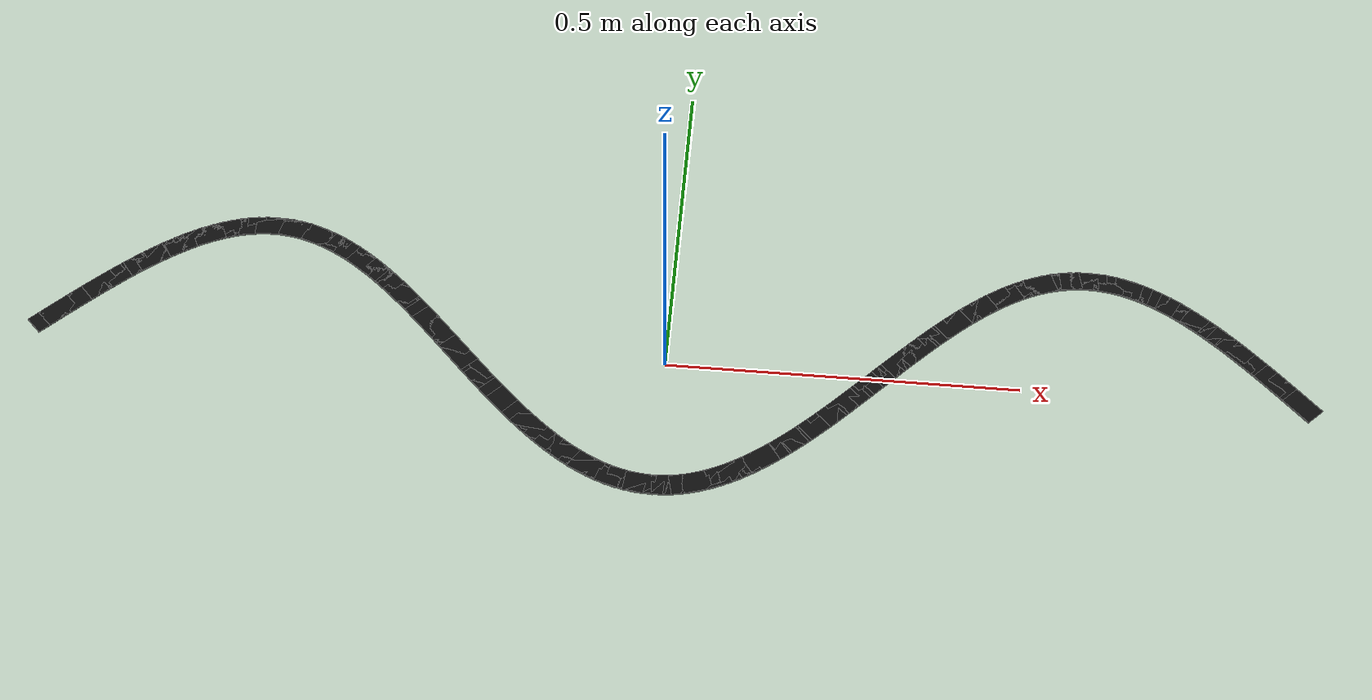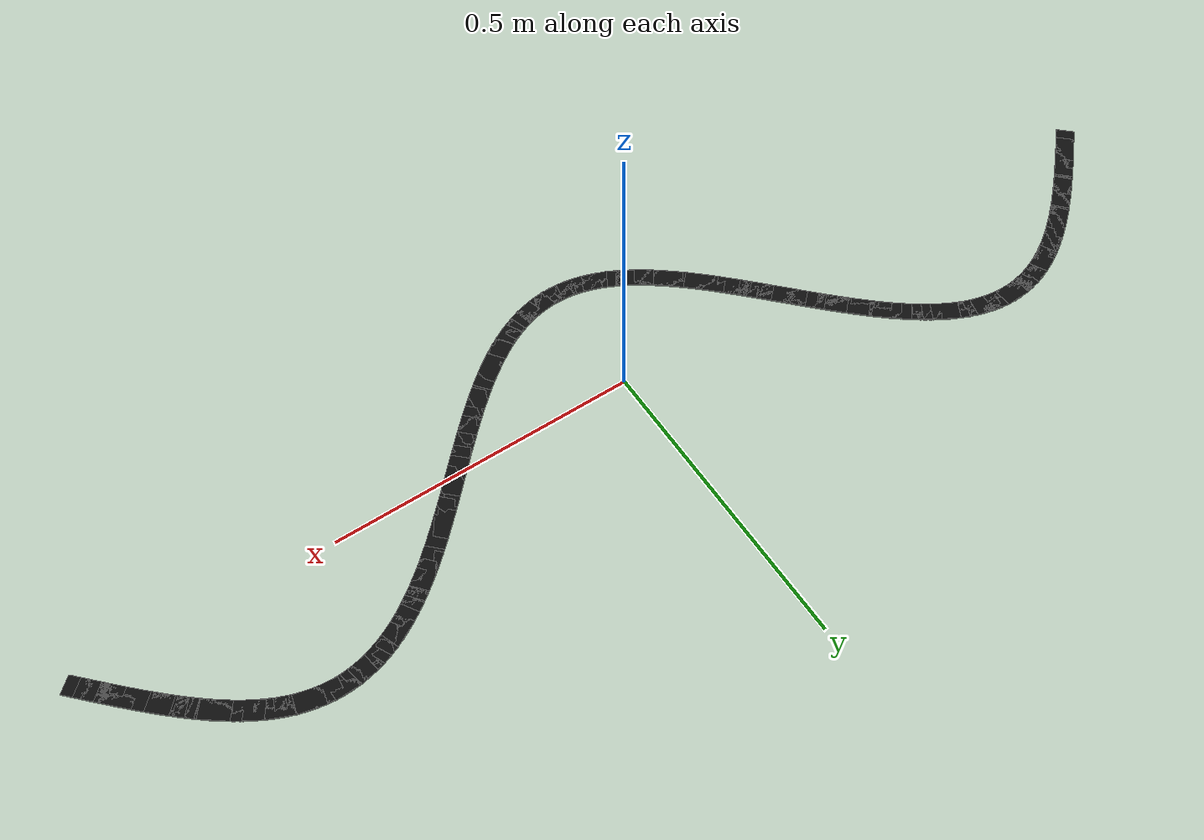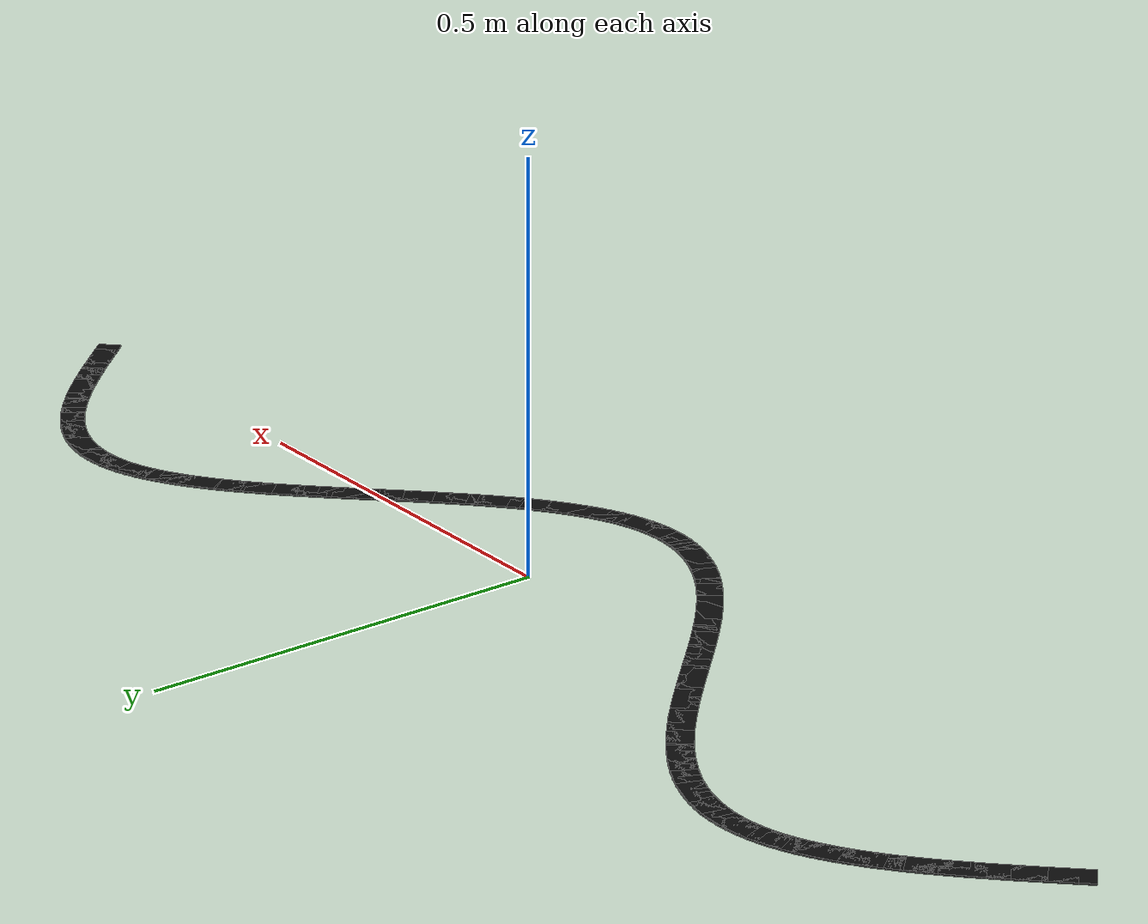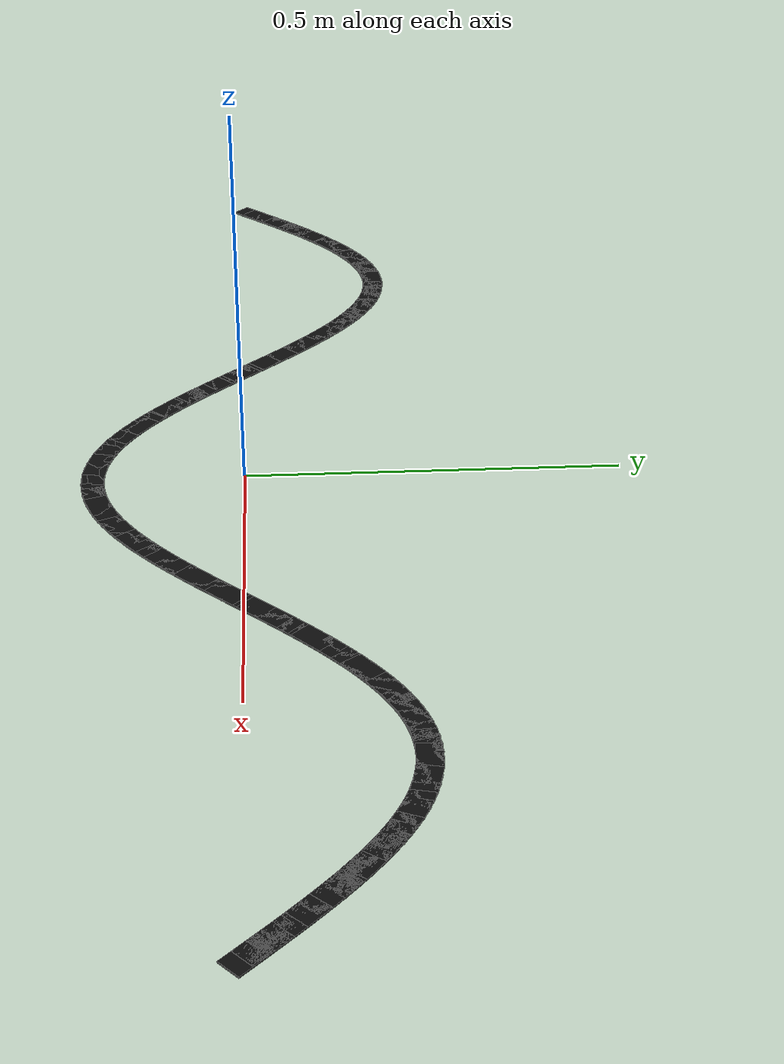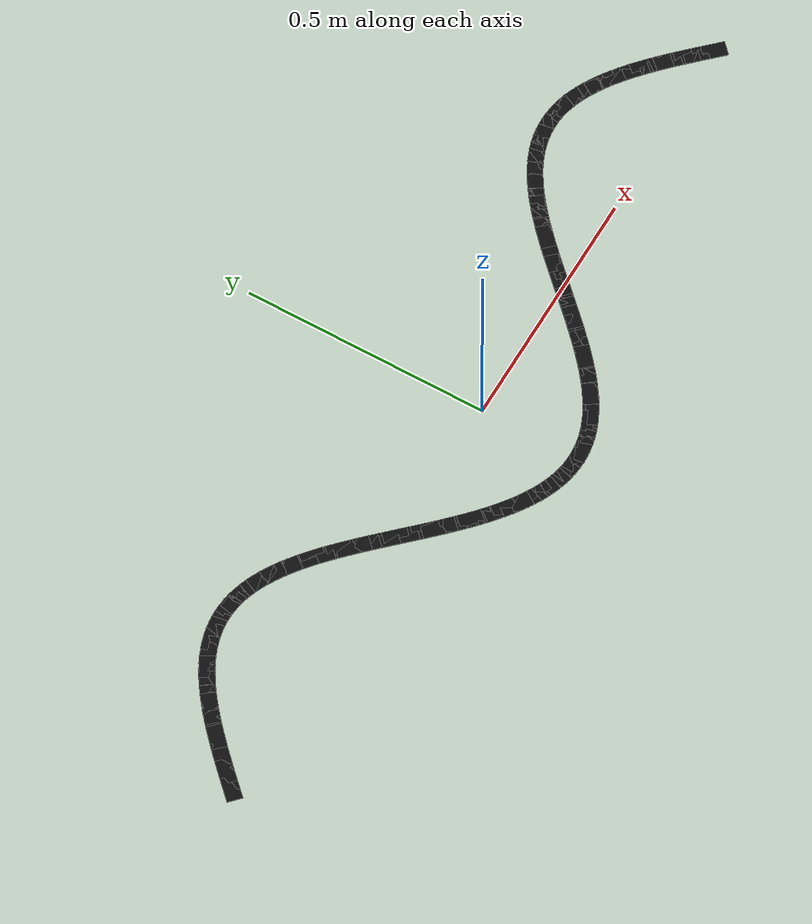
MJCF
<mujoco model="track_wave">
  <worldbody>
    <geom name="line_0" type="box" size="0.0240 0.015 0.001" pos="-0.8938 0.0065 0.001" quat="0.919478 0 0 0.393142" contype="0" conaffinity="0" group="2" rgba="0.05 0.05 0.05 1"/>
    <geom name="line_1" type="box" size="0.0240 0.015 0.001" pos="-0.8813 0.0196 0.001" quat="0.919899 0 0 0.392156" contype="0" conaffinity="0" group="2" rgba="0.05 0.05 0.05 1"/>
    <geom name="line_2" type="box" size="0.0240 0.015 0.001" pos="-0.8688 0.0326 0.001" quat="0.920741 0 0 0.390174" contype="0" conaffinity="0" group="2" rgba="0.05 0.05 0.05 1"/>
    <geom name="line_3" type="box" size="0.0239 0.015 0.001" pos="-0.8562 0.0454 0.001" quat="0.922006 0 0 0.387175" contype="0" conaffinity="0" group="2" rgba="0.05 0.05 0.05 1"/>
    <geom name="line_4" type="box" size="0.0238 0.015 0.001" pos="-0.8438 0.0580 0.001" quat="0.923695 0 0 0.383128" contype="0" conaffinity="0" group="2" rgba="0.05 0.05 0.05 1"/>
    <geom name="line_5" type="box" size="0.0238 0.015 0.001" pos="-0.8313 0.0704 0.001" quat="0.925810 0 0 0.377990" contype="0" conaffinity="0" group="2" rgba="0.05 0.05 0.05 1"/>
    <geom name="line_6" type="box" size="0.0236 0.015 0.001" pos="-0.8187 0.0825 0.001" quat="0.928350 0 0 0.371708" contype="0" conaffinity="0" group="2" rgba="0.05 0.05 0.05 1"/>
    <geom name="line_7" type="box" size="0.0235 0.015 0.001" pos="-0.8063 0.0942 0.001" quat="0.931314 0 0 0.364217" contype="0" conaffinity="0" group="2" rgba="0.05 0.05 0.05 1"/>
    <geom name="line_8" type="box" size="0.0234 0.015 0.001" pos="-0.7938 0.1056 0.001" quat="0.934698 0 0 0.355442" contype="0" conaffinity="0" group="2" rgba="0.05 0.05 0.05 1"/>
    <geom name="line_9" type="box" size="0.0232 0.015 0.001" pos="-0.7812 0.1164 0.001" quat="0.938494 0 0 0.345296" contype="0" conaffinity="0" group="2" rgba="0.05 0.05 0.05 1"/>
    <geom name="line_10" type="box" size="0.0230 0.015 0.001" pos="-0.7688 0.1268 0.001" quat="0.942685 0 0 0.333683" contype="0" conaffinity="0" group="2" rgba="0.05 0.05 0.05 1"/>
    <geom name="line_11" type="box" size="0.0229 0.015 0.001" pos="-0.7562 0.1366 0.001" quat="0.947249 0 0 0.320499" contype="0" conaffinity="0" group="2" rgba="0.05 0.05 0.05 1"/>
    <geom name="line_12" type="box" size="0.0227 0.015 0.001" pos="-0.7438 0.1459 0.001" quat="0.952150 0 0 0.305632" contype="0" conaffinity="0" group="2" rgba="0.05 0.05 0.05 1"/>
    <geom name="line_13" type="box" size="0.0225 0.015 0.001" pos="-0.7313 0.1545 0.001" quat="0.957338 0 0 0.288971" contype="0" conaffinity="0" group="2" rgba="0.05 0.05 0.05 1"/>
    <geom name="line_14" type="box" size="0.0223 0.015 0.001" pos="-0.7188 0.1625 0.001" quat="0.962745 0 0 0.270410" contype="0" conaffinity="0" group="2" rgba="0.05 0.05 0.05 1"/>
    <geom name="line_15" type="box" size="0.0221 0.015 0.001" pos="-0.7063 0.1697 0.001" quat="0.968283 0 0 0.249855" contype="0" conaffinity="0" group="2" rgba="0.05 0.05 0.05 1"/>
    <geom name="line_16" type="box" size="0.0220 0.015 0.001" pos="-0.6937 0.1763 0.001" quat="0.973839 0 0 0.227238" contype="0" conaffinity="0" group="2" rgba="0.05 0.05 0.05 1"/>
    <geom name="line_17" type="box" size="0.0218 0.015 0.001" pos="-0.6813 0.1821 0.001" quat="0.979277 0 0 0.202527" contype="0" conaffinity="0" group="2" rgba="0.05 0.05 0.05 1"/>
    <geom name="line_18" type="box" size="0.0217 0.015 0.001" pos="-0.6687 0.1871 0.001" quat="0.984435 0 0 0.175749" contype="0" conaffinity="0" group="2" rgba="0.05 0.05 0.05 1"/>
    <geom name="line_19" type="box" size="0.0215 0.015 0.001" pos="-0.6562 0.1913 0.001" quat="0.989137 0 0 0.146995" contype="0" conaffinity="0" group="2" rgba="0.05 0.05 0.05 1"/>
    <geom name="line_20" type="box" size="0.0214 0.015 0.001" pos="-0.6438 0.1947 0.001" quat="0.993197 0 0 0.116444" contype="0" conaffinity="0" group="2" rgba="0.05 0.05 0.05 1"/>
    <geom name="line_21" type="box" size="0.0213 0.015 0.001" pos="-0.6312 0.1972 0.001" quat="0.996435 0 0 0.084364" contype="0" conaffinity="0" group="2" rgba="0.05 0.05 0.05 1"/>
    <geom name="line_22" type="box" size="0.0213 0.015 0.001" pos="-0.6188 0.1989 0.001" quat="0.998693 0 0 0.051111" contype="0" conaffinity="0" group="2" rgba="0.05 0.05 0.05 1"/>
    <geom name="line_23" type="box" size="0.0213 0.015 0.001" pos="-0.6062 0.1998 0.001" quat="0.999853 0 0 0.017121" contype="0" conaffinity="0" group="2" rgba="0.05 0.05 0.05 1"/>
    <geom name="line_24" type="box" size="0.0213 0.015 0.001" pos="-0.5938 0.1998 0.001" quat="0.999853 0 0 -0.017121" contype="0" conaffinity="0" group="2" rgba="0.05 0.05 0.05 1"/>
    <geom name="line_25" type="box" size="0.0213 0.015 0.001" pos="-0.5813 0.1989 0.001" quat="0.998693 0 0 -0.051111" contype="0" conaffinity="0" group="2" rgba="0.05 0.05 0.05 1"/>
    <geom name="line_26" type="box" size="0.0213 0.015 0.001" pos="-0.5687 0.1972 0.001" quat="0.996435 0 0 -0.084364" contype="0" conaffinity="0" group="2" rgba="0.05 0.05 0.05 1"/>
    <geom name="line_27" type="box" size="0.0214 0.015 0.001" pos="-0.5563 0.1947 0.001" quat="0.993197 0 0 -0.116444" contype="0" conaffinity="0" group="2" rgba="0.05 0.05 0.05 1"/>
    <geom name="line_28" type="box" size="0.0215 0.015 0.001" pos="-0.5437 0.1913 0.001" quat="0.989137 0 0 -0.146995" contype="0" conaffinity="0" group="2" rgba="0.05 0.05 0.05 1"/>
    <geom name="line_29" type="box" size="0.0217 0.015 0.001" pos="-0.5312 0.1871 0.001" quat="0.984435 0 0 -0.175749" contype="0" conaffinity="0" group="2" rgba="0.05 0.05 0.05 1"/>
    <geom name="line_30" type="box" size="0.0218 0.015 0.001" pos="-0.5188 0.1821 0.001" quat="0.979277 0 0 -0.202527" contype="0" conaffinity="0" group="2" rgba="0.05 0.05 0.05 1"/>
    <geom name="line_31" type="box" size="0.0220 0.015 0.001" pos="-0.5062 0.1763 0.001" quat="0.973839 0 0 -0.227238" contype="0" conaffinity="0" group="2" rgba="0.05 0.05 0.05 1"/>
    <geom name="line_32" type="box" size="0.0221 0.015 0.001" pos="-0.4938 0.1697 0.001" quat="0.968283 0 0 -0.249855" contype="0" conaffinity="0" group="2" rgba="0.05 0.05 0.05 1"/>
    <geom name="line_33" type="box" size="0.0223 0.015 0.001" pos="-0.4813 0.1625 0.001" quat="0.962745 0 0 -0.270410" contype="0" conaffinity="0" group="2" rgba="0.05 0.05 0.05 1"/>
    <geom name="line_34" type="box" size="0.0225 0.015 0.001" pos="-0.4688 0.1545 0.001" quat="0.957338 0 0 -0.288971" contype="0" conaffinity="0" group="2" rgba="0.05 0.05 0.05 1"/>
    <geom name="line_35" type="box" size="0.0227 0.015 0.001" pos="-0.4563 0.1459 0.001" quat="0.952150 0 0 -0.305632" contype="0" conaffinity="0" group="2" rgba="0.05 0.05 0.05 1"/>
    <geom name="line_36" type="box" size="0.0229 0.015 0.001" pos="-0.4437 0.1366 0.001" quat="0.947249 0 0 -0.320499" contype="0" conaffinity="0" group="2" rgba="0.05 0.05 0.05 1"/>
    <geom name="line_37" type="box" size="0.0230 0.015 0.001" pos="-0.4312 0.1268 0.001" quat="0.942685 0 0 -0.333683" contype="0" conaffinity="0" group="2" rgba="0.05 0.05 0.05 1"/>
    <geom name="line_38" type="box" size="0.0232 0.015 0.001" pos="-0.4187 0.1164 0.001" quat="0.938494 0 0 -0.345296" contype="0" conaffinity="0" group="2" rgba="0.05 0.05 0.05 1"/>
    <geom name="line_39" type="box" size="0.0234 0.015 0.001" pos="-0.4062 0.1056 0.001" quat="0.934698 0 0 -0.355442" contype="0" conaffinity="0" group="2" rgba="0.05 0.05 0.05 1"/>
    <geom name="line_40" type="box" size="0.0235 0.015 0.001" pos="-0.3938 0.0942 0.001" quat="0.931314 0 0 -0.364217" contype="0" conaffinity="0" group="2" rgba="0.05 0.05 0.05 1"/>
    <geom name="line_41" type="box" size="0.0236 0.015 0.001" pos="-0.3813 0.0825 0.001" quat="0.928350 0 0 -0.371708" contype="0" conaffinity="0" group="2" rgba="0.05 0.05 0.05 1"/>
    <geom name="line_42" type="box" size="0.0238 0.015 0.001" pos="-0.3687 0.0704 0.001" quat="0.925810 0 0 -0.377990" contype="0" conaffinity="0" group="2" rgba="0.05 0.05 0.05 1"/>
    <geom name="line_43" type="box" size="0.0238 0.015 0.001" pos="-0.3562 0.0580 0.001" quat="0.923695 0 0 -0.383128" contype="0" conaffinity="0" group="2" rgba="0.05 0.05 0.05 1"/>
    <geom name="line_44" type="box" size="0.0239 0.015 0.001" pos="-0.3438 0.0454 0.001" quat="0.922006 0 0 -0.387175" contype="0" conaffinity="0" group="2" rgba="0.05 0.05 0.05 1"/>
    <geom name="line_45" type="box" size="0.0240 0.015 0.001" pos="-0.3313 0.0326 0.001" quat="0.920741 0 0 -0.390174" contype="0" conaffinity="0" group="2" rgba="0.05 0.05 0.05 1"/>
    <geom name="line_46" type="box" size="0.0240 0.015 0.001" pos="-0.3188 0.0196 0.001" quat="0.919899 0 0 -0.392156" contype="0" conaffinity="0" group="2" rgba="0.05 0.05 0.05 1"/>
    <geom name="line_47" type="box" size="0.0240 0.015 0.001" pos="-0.3062 0.0065 0.001" quat="0.919478 0 0 -0.393142" contype="0" conaffinity="0" group="2" rgba="0.05 0.05 0.05 1"/>
    <geom name="line_48" type="box" size="0.0240 0.015 0.001" pos="-0.2937 -0.0065 0.001" quat="0.919478 0 0 -0.393142" contype="0" conaffinity="0" group="2" rgba="0.05 0.05 0.05 1"/>
    <geom name="line_49" type="box" size="0.0240 0.015 0.001" pos="-0.2812 -0.0196 0.001" quat="0.919899 0 0 -0.392156" contype="0" conaffinity="0" group="2" rgba="0.05 0.05 0.05 1"/>
    <geom name="line_50" type="box" size="0.0240 0.015 0.001" pos="-0.2688 -0.0326 0.001" quat="0.920741 0 0 -0.390174" contype="0" conaffinity="0" group="2" rgba="0.05 0.05 0.05 1"/>
    <geom name="line_51" type="box" size="0.0239 0.015 0.001" pos="-0.2563 -0.0454 0.001" quat="0.922006 0 0 -0.387175" contype="0" conaffinity="0" group="2" rgba="0.05 0.05 0.05 1"/>
    <geom name="line_52" type="box" size="0.0238 0.015 0.001" pos="-0.2437 -0.0580 0.001" quat="0.923695 0 0 -0.383128" contype="0" conaffinity="0" group="2" rgba="0.05 0.05 0.05 1"/>
    <geom name="line_53" type="box" size="0.0238 0.015 0.001" pos="-0.2312 -0.0704 0.001" quat="0.925810 0 0 -0.377990" contype="0" conaffinity="0" group="2" rgba="0.05 0.05 0.05 1"/>
    <geom name="line_54" type="box" size="0.0236 0.015 0.001" pos="-0.2188 -0.0825 0.001" quat="0.928350 0 0 -0.371708" contype="0" conaffinity="0" group="2" rgba="0.05 0.05 0.05 1"/>
    <geom name="line_55" type="box" size="0.0235 0.015 0.001" pos="-0.2063 -0.0942 0.001" quat="0.931314 0 0 -0.364217" contype="0" conaffinity="0" group="2" rgba="0.05 0.05 0.05 1"/>
    <geom name="line_56" type="box" size="0.0234 0.015 0.001" pos="-0.1938 -0.1056 0.001" quat="0.934698 0 0 -0.355442" contype="0" conaffinity="0" group="2" rgba="0.05 0.05 0.05 1"/>
    <geom name="line_57" type="box" size="0.0232 0.015 0.001" pos="-0.1812 -0.1164 0.001" quat="0.938494 0 0 -0.345296" contype="0" conaffinity="0" group="2" rgba="0.05 0.05 0.05 1"/>
    <geom name="line_58" type="box" size="0.0230 0.015 0.001" pos="-0.1687 -0.1268 0.001" quat="0.942685 0 0 -0.333683" contype="0" conaffinity="0" group="2" rgba="0.05 0.05 0.05 1"/>
    <geom name="line_59" type="box" size="0.0229 0.015 0.001" pos="-0.1562 -0.1366 0.001" quat="0.947249 0 0 -0.320499" contype="0" conaffinity="0" group="2" rgba="0.05 0.05 0.05 1"/>
    <geom name="line_60" type="box" size="0.0227 0.015 0.001" pos="-0.1438 -0.1459 0.001" quat="0.952150 0 0 -0.305632" contype="0" conaffinity="0" group="2" rgba="0.05 0.05 0.05 1"/>
    <geom name="line_61" type="box" size="0.0225 0.015 0.001" pos="-0.1313 -0.1545 0.001" quat="0.957338 0 0 -0.288971" contype="0" conaffinity="0" group="2" rgba="0.05 0.05 0.05 1"/>
    <geom name="line_62" type="box" size="0.0223 0.015 0.001" pos="-0.1187 -0.1625 0.001" quat="0.962745 0 0 -0.270410" contype="0" conaffinity="0" group="2" rgba="0.05 0.05 0.05 1"/>
    <geom name="line_63" type="box" size="0.0221 0.015 0.001" pos="-0.1062 -0.1697 0.001" quat="0.968283 0 0 -0.249855" contype="0" conaffinity="0" group="2" rgba="0.05 0.05 0.05 1"/>
    <geom name="line_64" type="box" size="0.0220 0.015 0.001" pos="-0.0938 -0.1763 0.001" quat="0.973839 0 0 -0.227238" contype="0" conaffinity="0" group="2" rgba="0.05 0.05 0.05 1"/>
    <geom name="line_65" type="box" size="0.0218 0.015 0.001" pos="-0.0813 -0.1821 0.001" quat="0.979277 0 0 -0.202527" contype="0" conaffinity="0" group="2" rgba="0.05 0.05 0.05 1"/>
    <geom name="line_66" type="box" size="0.0217 0.015 0.001" pos="-0.0688 -0.1871 0.001" quat="0.984435 0 0 -0.175749" contype="0" conaffinity="0" group="2" rgba="0.05 0.05 0.05 1"/>
    <geom name="line_67" type="box" size="0.0215 0.015 0.001" pos="-0.0562 -0.1913 0.001" quat="0.989137 0 0 -0.146995" contype="0" conaffinity="0" group="2" rgba="0.05 0.05 0.05 1"/>
    <geom name="line_68" type="box" size="0.0214 0.015 0.001" pos="-0.0437 -0.1947 0.001" quat="0.993197 0 0 -0.116444" contype="0" conaffinity="0" group="2" rgba="0.05 0.05 0.05 1"/>
    <geom name="line_69" type="box" size="0.0213 0.015 0.001" pos="-0.0312 -0.1972 0.001" quat="0.996435 0 0 -0.084364" contype="0" conaffinity="0" group="2" rgba="0.05 0.05 0.05 1"/>
    <geom name="line_70" type="box" size="0.0213 0.015 0.001" pos="-0.0188 -0.1989 0.001" quat="0.998693 0 0 -0.051111" contype="0" conaffinity="0" group="2" rgba="0.05 0.05 0.05 1"/>
    <geom name="line_71" type="box" size="0.0213 0.015 0.001" pos="-0.0063 -0.1998 0.001" quat="0.999853 0 0 -0.017121" contype="0" conaffinity="0" group="2" rgba="0.05 0.05 0.05 1"/>
    <geom name="line_72" type="box" size="0.0213 0.015 0.001" pos="0.0062 -0.1998 0.001" quat="0.999853 0 0 0.017121" contype="0" conaffinity="0" group="2" rgba="0.05 0.05 0.05 1"/>
    <geom name="line_73" type="box" size="0.0213 0.015 0.001" pos="0.0188 -0.1989 0.001" quat="0.998693 0 0 0.051111" contype="0" conaffinity="0" group="2" rgba="0.05 0.05 0.05 1"/>
    <geom name="line_74" type="box" size="0.0213 0.015 0.001" pos="0.0313 -0.1972 0.001" quat="0.996435 0 0 0.084364" contype="0" conaffinity="0" group="2" rgba="0.05 0.05 0.05 1"/>
    <geom name="line_75" type="box" size="0.0214 0.015 0.001" pos="0.0438 -0.1947 0.001" quat="0.993197 0 0 0.116444" contype="0" conaffinity="0" group="2" rgba="0.05 0.05 0.05 1"/>
    <geom name="line_76" type="box" size="0.0215 0.015 0.001" pos="0.0562 -0.1913 0.001" quat="0.989137 0 0 0.146995" contype="0" conaffinity="0" group="2" rgba="0.05 0.05 0.05 1"/>
    <geom name="line_77" type="box" size="0.0217 0.015 0.001" pos="0.0687 -0.1871 0.001" quat="0.984435 0 0 0.175749" contype="0" conaffinity="0" group="2" rgba="0.05 0.05 0.05 1"/>
    <geom name="line_78" type="box" size="0.0218 0.015 0.001" pos="0.0813 -0.1821 0.001" quat="0.979277 0 0 0.202527" contype="0" conaffinity="0" group="2" rgba="0.05 0.05 0.05 1"/>
    <geom name="line_79" type="box" size="0.0220 0.015 0.001" pos="0.0938 -0.1763 0.001" quat="0.973839 0 0 0.227238" contype="0" conaffinity="0" group="2" rgba="0.05 0.05 0.05 1"/>
    <geom name="line_80" type="box" size="0.0221 0.015 0.001" pos="0.1063 -0.1697 0.001" quat="0.968283 0 0 0.249855" contype="0" conaffinity="0" group="2" rgba="0.05 0.05 0.05 1"/>
    <geom name="line_81" type="box" size="0.0223 0.015 0.001" pos="0.1188 -0.1625 0.001" quat="0.962745 0 0 0.270410" contype="0" conaffinity="0" group="2" rgba="0.05 0.05 0.05 1"/>
    <geom name="line_82" type="box" size="0.0225 0.015 0.001" pos="0.1312 -0.1545 0.001" quat="0.957338 0 0 0.288971" contype="0" conaffinity="0" group="2" rgba="0.05 0.05 0.05 1"/>
    <geom name="line_83" type="box" size="0.0227 0.015 0.001" pos="0.1438 -0.1459 0.001" quat="0.952150 0 0 0.305632" contype="0" conaffinity="0" group="2" rgba="0.05 0.05 0.05 1"/>
    <geom name="line_84" type="box" size="0.0229 0.015 0.001" pos="0.1562 -0.1366 0.001" quat="0.947249 0 0 0.320499" contype="0" conaffinity="0" group="2" rgba="0.05 0.05 0.05 1"/>
    <geom name="line_85" type="box" size="0.0230 0.015 0.001" pos="0.1688 -0.1268 0.001" quat="0.942685 0 0 0.333683" contype="0" conaffinity="0" group="2" rgba="0.05 0.05 0.05 1"/>
    <geom name="line_86" type="box" size="0.0232 0.015 0.001" pos="0.1813 -0.1164 0.001" quat="0.938494 0 0 0.345296" contype="0" conaffinity="0" group="2" rgba="0.05 0.05 0.05 1"/>
    <geom name="line_87" type="box" size="0.0234 0.015 0.001" pos="0.1937 -0.1056 0.001" quat="0.934698 0 0 0.355442" contype="0" conaffinity="0" group="2" rgba="0.05 0.05 0.05 1"/>
    <geom name="line_88" type="box" size="0.0235 0.015 0.001" pos="0.2063 -0.0942 0.001" quat="0.931314 0 0 0.364217" contype="0" conaffinity="0" group="2" rgba="0.05 0.05 0.05 1"/>
    <geom name="line_89" type="box" size="0.0236 0.015 0.001" pos="0.2188 -0.0825 0.001" quat="0.928350 0 0 0.371708" contype="0" conaffinity="0" group="2" rgba="0.05 0.05 0.05 1"/>
    <geom name="line_90" type="box" size="0.0238 0.015 0.001" pos="0.2313 -0.0704 0.001" quat="0.925810 0 0 0.377990" contype="0" conaffinity="0" group="2" rgba="0.05 0.05 0.05 1"/>
    <geom name="line_91" type="box" size="0.0238 0.015 0.001" pos="0.2438 -0.0580 0.001" quat="0.923695 0 0 0.383128" contype="0" conaffinity="0" group="2" rgba="0.05 0.05 0.05 1"/>
    <geom name="line_92" type="box" size="0.0239 0.015 0.001" pos="0.2562 -0.0454 0.001" quat="0.922006 0 0 0.387175" contype="0" conaffinity="0" group="2" rgba="0.05 0.05 0.05 1"/>
    <geom name="line_93" type="box" size="0.0240 0.015 0.001" pos="0.2688 -0.0326 0.001" quat="0.920741 0 0 0.390174" contype="0" conaffinity="0" group="2" rgba="0.05 0.05 0.05 1"/>
    <geom name="line_94" type="box" size="0.0240 0.015 0.001" pos="0.2812 -0.0196 0.001" quat="0.919899 0 0 0.392156" contype="0" conaffinity="0" group="2" rgba="0.05 0.05 0.05 1"/>
    <geom name="line_95" type="box" size="0.0240 0.015 0.001" pos="0.2938 -0.0065 0.001" quat="0.919478 0 0 0.393142" contype="0" conaffinity="0" group="2" rgba="0.05 0.05 0.05 1"/>
    <geom name="line_96" type="box" size="0.0240 0.015 0.001" pos="0.3063 0.0065 0.001" quat="0.919478 0 0 0.393142" contype="0" conaffinity="0" group="2" rgba="0.05 0.05 0.05 1"/>
    <geom name="line_97" type="box" size="0.0240 0.015 0.001" pos="0.3187 0.0196 0.001" quat="0.919899 0 0 0.392156" contype="0" conaffinity="0" group="2" rgba="0.05 0.05 0.05 1"/>
    <geom name="line_98" type="box" size="0.0240 0.015 0.001" pos="0.3313 0.0326 0.001" quat="0.920741 0 0 0.390174" contype="0" conaffinity="0" group="2" rgba="0.05 0.05 0.05 1"/>
    <geom name="line_99" type="box" size="0.0239 0.015 0.001" pos="0.3438 0.0454 0.001" quat="0.922006 0 0 0.387175" contype="0" conaffinity="0" group="2" rgba="0.05 0.05 0.05 1"/>
    <geom name="line_100" type="box" size="0.0238 0.015 0.001" pos="0.3563 0.0580 0.001" quat="0.923695 0 0 0.383128" contype="0" conaffinity="0" group="2" rgba="0.05 0.05 0.05 1"/>
    <geom name="line_101" type="box" size="0.0238 0.015 0.001" pos="0.3688 0.0704 0.001" quat="0.925810 0 0 0.377990" contype="0" conaffinity="0" group="2" rgba="0.05 0.05 0.05 1"/>
    <geom name="line_102" type="box" size="0.0236 0.015 0.001" pos="0.3812 0.0825 0.001" quat="0.928350 0 0 0.371708" contype="0" conaffinity="0" group="2" rgba="0.05 0.05 0.05 1"/>
    <geom name="line_103" type="box" size="0.0235 0.015 0.001" pos="0.3938 0.0942 0.001" quat="0.931314 0 0 0.364217" contype="0" conaffinity="0" group="2" rgba="0.05 0.05 0.05 1"/>
    <geom name="line_104" type="box" size="0.0234 0.015 0.001" pos="0.4062 0.1056 0.001" quat="0.934698 0 0 0.355442" contype="0" conaffinity="0" group="2" rgba="0.05 0.05 0.05 1"/>
    <geom name="line_105" type="box" size="0.0232 0.015 0.001" pos="0.4188 0.1164 0.001" quat="0.938494 0 0 0.345296" contype="0" conaffinity="0" group="2" rgba="0.05 0.05 0.05 1"/>
    <geom name="line_106" type="box" size="0.0230 0.015 0.001" pos="0.4313 0.1268 0.001" quat="0.942685 0 0 0.333683" contype="0" conaffinity="0" group="2" rgba="0.05 0.05 0.05 1"/>
    <geom name="line_107" type="box" size="0.0229 0.015 0.001" pos="0.4437 0.1366 0.001" quat="0.947249 0 0 0.320499" contype="0" conaffinity="0" group="2" rgba="0.05 0.05 0.05 1"/>
    <geom name="line_108" type="box" size="0.0227 0.015 0.001" pos="0.4563 0.1459 0.001" quat="0.952150 0 0 0.305632" contype="0" conaffinity="0" group="2" rgba="0.05 0.05 0.05 1"/>
    <geom name="line_109" type="box" size="0.0225 0.015 0.001" pos="0.4688 0.1545 0.001" quat="0.957338 0 0 0.288971" contype="0" conaffinity="0" group="2" rgba="0.05 0.05 0.05 1"/>
    <geom name="line_110" type="box" size="0.0223 0.015 0.001" pos="0.4813 0.1625 0.001" quat="0.962745 0 0 0.270410" contype="0" conaffinity="0" group="2" rgba="0.05 0.05 0.05 1"/>
    <geom name="line_111" type="box" size="0.0221 0.015 0.001" pos="0.4938 0.1697 0.001" quat="0.968283 0 0 0.249855" contype="0" conaffinity="0" group="2" rgba="0.05 0.05 0.05 1"/>
    <geom name="line_112" type="box" size="0.0220 0.015 0.001" pos="0.5062 0.1763 0.001" quat="0.973839 0 0 0.227238" contype="0" conaffinity="0" group="2" rgba="0.05 0.05 0.05 1"/>
    <geom name="line_113" type="box" size="0.0218 0.015 0.001" pos="0.5188 0.1821 0.001" quat="0.979277 0 0 0.202527" contype="0" conaffinity="0" group="2" rgba="0.05 0.05 0.05 1"/>
    <geom name="line_114" type="box" size="0.0217 0.015 0.001" pos="0.5312 0.1871 0.001" quat="0.984435 0 0 0.175749" contype="0" conaffinity="0" group="2" rgba="0.05 0.05 0.05 1"/>
    <geom name="line_115" type="box" size="0.0215 0.015 0.001" pos="0.5438 0.1913 0.001" quat="0.989137 0 0 0.146995" contype="0" conaffinity="0" group="2" rgba="0.05 0.05 0.05 1"/>
    <geom name="line_116" type="box" size="0.0214 0.015 0.001" pos="0.5563 0.1947 0.001" quat="0.993197 0 0 0.116444" contype="0" conaffinity="0" group="2" rgba="0.05 0.05 0.05 1"/>
    <geom name="line_117" type="box" size="0.0213 0.015 0.001" pos="0.5687 0.1972 0.001" quat="0.996435 0 0 0.084364" contype="0" conaffinity="0" group="2" rgba="0.05 0.05 0.05 1"/>
    <geom name="line_118" type="box" size="0.0213 0.015 0.001" pos="0.5813 0.1989 0.001" quat="0.998693 0 0 0.051111" contype="0" conaffinity="0" group="2" rgba="0.05 0.05 0.05 1"/>
    <geom name="line_119" type="box" size="0.0213 0.015 0.001" pos="0.5938 0.1998 0.001" quat="0.999853 0 0 0.017121" contype="0" conaffinity="0" group="2" rgba="0.05 0.05 0.05 1"/>
    <geom name="line_120" type="box" size="0.0213 0.015 0.001" pos="0.6063 0.1998 0.001" quat="0.999853 0 0 -0.017121" contype="0" conaffinity="0" group="2" rgba="0.05 0.05 0.05 1"/>
    <geom name="line_121" type="box" size="0.0213 0.015 0.001" pos="0.6188 0.1989 0.001" quat="0.998693 0 0 -0.051111" contype="0" conaffinity="0" group="2" rgba="0.05 0.05 0.05 1"/>
    <geom name="line_122" type="box" size="0.0213 0.015 0.001" pos="0.6312 0.1972 0.001" quat="0.996435 0 0 -0.084364" contype="0" conaffinity="0" group="2" rgba="0.05 0.05 0.05 1"/>
    <geom name="line_123" type="box" size="0.0214 0.015 0.001" pos="0.6438 0.1947 0.001" quat="0.993197 0 0 -0.116444" contype="0" conaffinity="0" group="2" rgba="0.05 0.05 0.05 1"/>
    <geom name="line_124" type="box" size="0.0215 0.015 0.001" pos="0.6562 0.1913 0.001" quat="0.989137 0 0 -0.146995" contype="0" conaffinity="0" group="2" rgba="0.05 0.05 0.05 1"/>
    <geom name="line_125" type="box" size="0.0217 0.015 0.001" pos="0.6688 0.1871 0.001" quat="0.984435 0 0 -0.175749" contype="0" conaffinity="0" group="2" rgba="0.05 0.05 0.05 1"/>
    <geom name="line_126" type="box" size="0.0218 0.015 0.001" pos="0.6813 0.1821 0.001" quat="0.979277 0 0 -0.202527" contype="0" conaffinity="0" group="2" rgba="0.05 0.05 0.05 1"/>
    <geom name="line_127" type="box" size="0.0220 0.015 0.001" pos="0.6937 0.1763 0.001" quat="0.973839 0 0 -0.227238" contype="0" conaffinity="0" group="2" rgba="0.05 0.05 0.05 1"/>
    <geom name="line_128" type="box" size="0.0221 0.015 0.001" pos="0.7063 0.1697 0.001" quat="0.968283 0 0 -0.249855" contype="0" conaffinity="0" group="2" rgba="0.05 0.05 0.05 1"/>
    <geom name="line_129" type="box" size="0.0223 0.015 0.001" pos="0.7188 0.1625 0.001" quat="0.962745 0 0 -0.270410" contype="0" conaffinity="0" group="2" rgba="0.05 0.05 0.05 1"/>
    <geom name="line_130" type="box" size="0.0225 0.015 0.001" pos="0.7313 0.1545 0.001" quat="0.957338 0 0 -0.288971" contype="0" conaffinity="0" group="2" rgba="0.05 0.05 0.05 1"/>
    <geom name="line_131" type="box" size="0.0227 0.015 0.001" pos="0.7438 0.1459 0.001" quat="0.952150 0 0 -0.305632" contype="0" conaffinity="0" group="2" rgba="0.05 0.05 0.05 1"/>
    <geom name="line_132" type="box" size="0.0229 0.015 0.001" pos="0.7562 0.1366 0.001" quat="0.947249 0 0 -0.320499" contype="0" conaffinity="0" group="2" rgba="0.05 0.05 0.05 1"/>
    <geom name="line_133" type="box" size="0.0230 0.015 0.001" pos="0.7688 0.1268 0.001" quat="0.942685 0 0 -0.333683" contype="0" conaffinity="0" group="2" rgba="0.05 0.05 0.05 1"/>
    <geom name="line_134" type="box" size="0.0232 0.015 0.001" pos="0.7812 0.1164 0.001" quat="0.938494 0 0 -0.345296" contype="0" conaffinity="0" group="2" rgba="0.05 0.05 0.05 1"/>
    <geom name="line_135" type="box" size="0.0234 0.015 0.001" pos="0.7938 0.1056 0.001" quat="0.934698 0 0 -0.355442" contype="0" conaffinity="0" group="2" rgba="0.05 0.05 0.05 1"/>
    <geom name="line_136" type="box" size="0.0235 0.015 0.001" pos="0.8063 0.0942 0.001" quat="0.931314 0 0 -0.364217" contype="0" conaffinity="0" group="2" rgba="0.05 0.05 0.05 1"/>
    <geom name="line_137" type="box" size="0.0236 0.015 0.001" pos="0.8187 0.0825 0.001" quat="0.928350 0 0 -0.371708" contype="0" conaffinity="0" group="2" rgba="0.05 0.05 0.05 1"/>
    <geom name="line_138" type="box" size="0.0238 0.015 0.001" pos="0.8313 0.0704 0.001" quat="0.925810 0 0 -0.377990" contype="0" conaffinity="0" group="2" rgba="0.05 0.05 0.05 1"/>
    <geom name="line_139" type="box" size="0.0238 0.015 0.001" pos="0.8438 0.0580 0.001" quat="0.923695 0 0 -0.383128" contype="0" conaffinity="0" group="2" rgba="0.05 0.05 0.05 1"/>
    <geom name="line_140" type="box" size="0.0239 0.015 0.001" pos="0.8563 0.0454 0.001" quat="0.922006 0 0 -0.387175" contype="0" conaffinity="0" group="2" rgba="0.05 0.05 0.05 1"/>
    <geom name="line_141" type="box" size="0.0240 0.015 0.001" pos="0.8688 0.0326 0.001" quat="0.920741 0 0 -0.390174" contype="0" conaffinity="0" group="2" rgba="0.05 0.05 0.05 1"/>
    <geom name="line_142" type="box" size="0.0240 0.015 0.001" pos="0.8813 0.0196 0.001" quat="0.919899 0 0 -0.392156" contype="0" conaffinity="0" group="2" rgba="0.05 0.05 0.05 1"/>
    <geom name="line_143" type="box" size="0.0240 0.015 0.001" pos="0.8938 0.0065 0.001" quat="0.919478 0 0 -0.393142" contype="0" conaffinity="0" group="2" rgba="0.05 0.05 0.05 1"/>
  </worldbody>
</mujoco>
